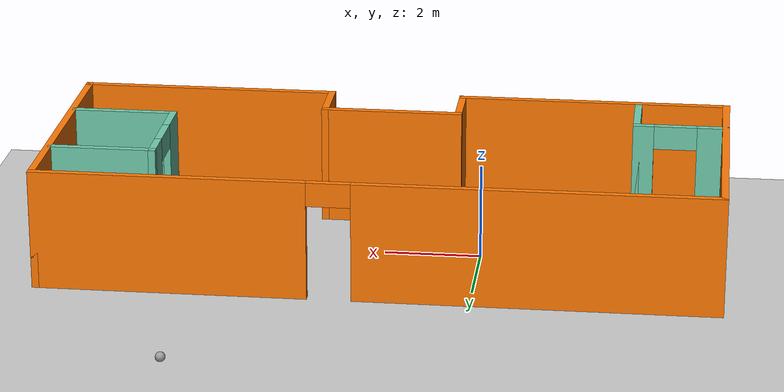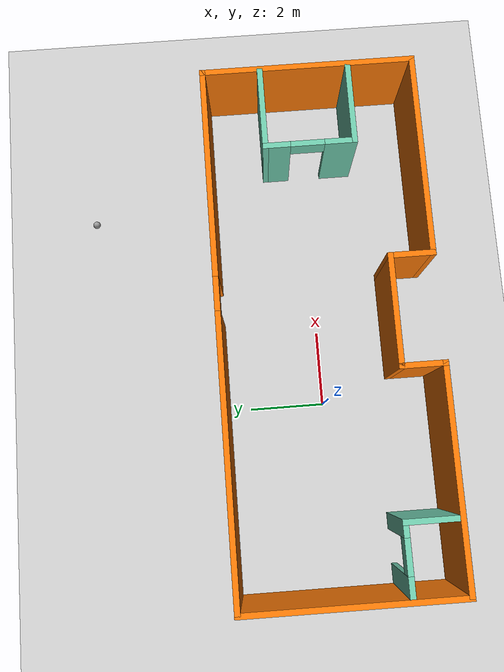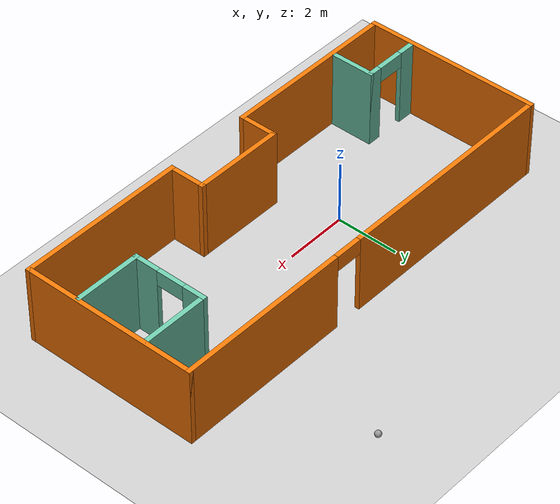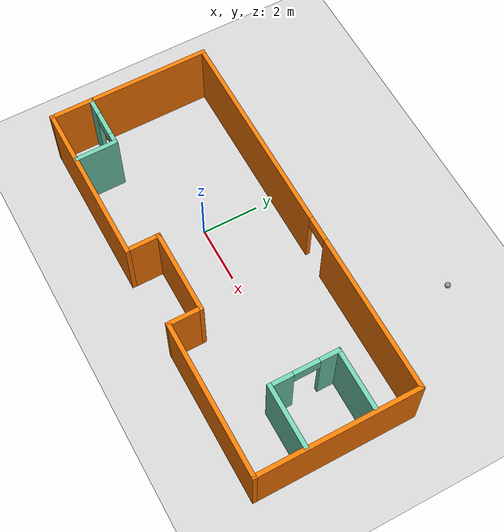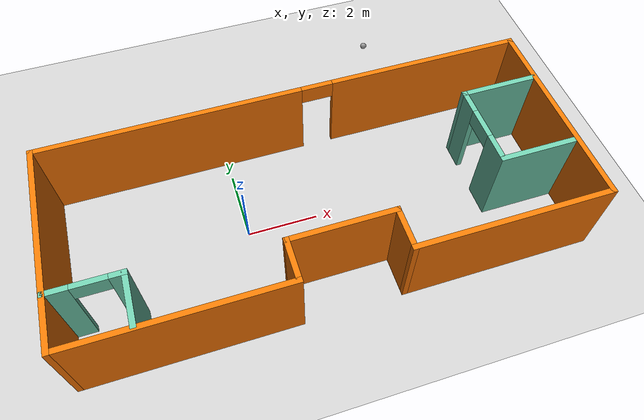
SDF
<sdf version="1.6">
 <world name="default">
  <light name="sun" type="directional">
   <pose>0 0 10 0 -0 0</pose>
   <diffuse>0.8 0.8 0.8 1</diffuse>
   <specular>0.2 0.2 0.2 1</specular>
   <attenuation>
    <range>1000</range>
    <constant>0.9</constant>
    <linear>0.01</linear>
    <quadratic>0.001</quadratic>
   </attenuation>
   <direction>-0.5 0.1 -0.9</direction>
  </light>
  <model name="ground_plane">
   <static>1</static>
   <link name="link">
    <collision name="collision">
     <geometry><plane><normal>0 0 1</normal><size>100 100</size></plane></geometry>
     <surface>
      <contact><collide_bitmask>65535</collide_bitmask></contact>
      <friction><ode><mu>100</mu><mu2>50</mu2></ode></friction>
     </surface>
    </collision>
    <visual name="visual">
     <cast_shadows>0</cast_shadows>
     <geometry><plane><normal>0 0 1</normal><size>100 100</size></plane></geometry>
     <material>
      <script><uri>file://media/materials/scripts/gazebo.material</uri><name>Gazebo/Grey</name></script>
     </material>
    </visual>
   </link>
  </model>
  <gravity>0 0 -9.8</gravity>
  <magnetic_field>6e-06 2.3e-05 -4.2e-05</magnetic_field>
  <atmosphere type="adiabatic"/>
  <physics name="default_physics" default="0" type="ode">
   <max_step_size>0.001</max_step_size>
   <real_time_factor>1</real_time_factor>
   <real_time_update_rate>1000</real_time_update_rate>
  </physics>
  <scene><ambient>0.4 0.4 0.4 1</ambient><background>0.7 0.7 0.7 1</background><shadows>1</shadows></scene>
  <spherical_coordinates>
   <surface_model>EARTH_WGS84</surface_model>
   <latitude_deg>0</latitude_deg>
   <longitude_deg>0</longitude_deg>
   <elevation>0</elevation>
   <heading_deg>0</heading_deg>
  </spherical_coordinates>
  <model name="my_ball">
   <link name="link_0">
    <inertial>
     <mass>1</mass>
     <inertia><ixx>0.1</ixx><ixy>0</ixy><ixz>0</ixz><iyy>0.1</iyy><iyz>0</iyz><izz>0.1</izz></inertia>
    </inertial>
    <visual name="visual">
     <geometry><sphere><radius>0.1</radius></sphere></geometry>
     <material>
      <lighting>1</lighting>
      <script><uri>file://media/materials/scripts/gazebo.material</uri><name>Gazebo/Grey</name></script>
      <shader type="pixel"><normal_map>__default__</normal_map></shader>
      <ambient>1 1 1 1</ambient>
      <diffuse>1 1 1 1</diffuse>
      <specular>1 1 1 1</specular>
      <emissive>1 1 1 1</emissive>
     </material>
    </visual>
    <collision name="collision">
     <geometry><sphere><radius>0.1</radius></sphere></geometry>
     <surface>
      <friction>
       <ode><mu>1</mu><mu2>1</mu2><fdir1>0 0 0</fdir1><slip1>0</slip1><slip2>0</slip2></ode>
       <torsional>
        <coefficient>1</coefficient>
        <patch_radius>0</patch_radius>
        <surface_radius>0</surface_radius>
        <use_patch_radius>1</use_patch_radius>
        <ode><slip>0</slip></ode>
       </torsional>
      </friction>
      <bounce><restitution_coefficient>0</restitution_coefficient><threshold>1e+06</threshold></bounce>
      <contact>
       <collide_without_contact>0</collide_without_contact>
       <collide_without_contact_bitmask>1</collide_without_contact_bitmask>
       <collide_bitmask>1</collide_bitmask>
       <ode>
        <soft_cfm>0</soft_cfm>
        <soft_erp>0.2</soft_erp>
        <kp>1e+13</kp>
        <kd>1</kd>
        <max_vel>0.01</max_vel>
        <min_depth>0</min_depth>
       </ode>
       <bullet>
        <split_impulse>1</split_impulse>
        <split_impulse_penetration_threshold>-0.01</split_impulse_penetration_threshold>
        <soft_cfm>0</soft_cfm>
        <soft_erp>0.2</soft_erp>
        <kp>1e+13</kp>
        <kd>1</kd>
       </bullet>
      </contact>
     </surface>
    </collision>
   </link>
   <static>0</static>
   <pose>5.63508 6.07431 0.1 0 -0 0</pose>
  </model>
  <model name="my_building_0">
   <pose>1.93031 -0.162625 0 0 -0 0</pose>
   <link name="Wall_1">
    <collision name="Wall_1_Collision">
     <geometry><box><size>5.75 0.15 2.5</size></box></geometry>
     <pose>0 0 1.25 0 -0 0</pose>
    </collision>
    <visual name="Wall_1_Visual">
     <pose>0 0 1.25 0 -0 0</pose>
     <geometry><box><size>5.75 0.15 2.5</size></box></geometry>
     <material>
      <script><uri>file://media/materials/scripts/gazebo.material</uri><name>Gazebo/Grey</name></script>
      <ambient>0.996078 0.47451 0.0196078 1</ambient>
     </material>
     <meta><layer>0</layer></meta>
    </visual>
    <pose>-6.925 0 0 0 -0 1.5708</pose>
   </link>
   <link name="Wall_10">
    <collision name="Wall_10_Collision">
     <geometry><box><size>5.75 0.15 2.5</size></box></geometry>
     <pose>0 0 1.25 0 -0 0</pose>
    </collision>
    <visual name="Wall_10_Visual">
     <pose>0 0 1.25 0 -0 0</pose>
     <geometry><box><size>5.75 0.15 2.5</size></box></geometry>
     <material>
      <script><uri>file://media/materials/scripts/gazebo.material</uri><name>Gazebo/Grey</name></script>
      <ambient>0.996078 0.47451 0.0196078 1</ambient>
     </material>
     <meta><layer>0</layer></meta>
    </visual>
    <pose>-4.075 -2.8 0 0 -0 3.14159</pose>
   </link>
   <link name="Wall_12">
    <pose>-5.98479 -1.39225 0 0 -0 0</pose>
    <visual name="Wall_12_Visual_0">
     <pose>-0.670403 0 1.25 0 -0 0</pose>
     <geometry><box><size>0.659195 0.15 2.5</size></box></geometry>
     <material>
      <script><uri>file://media/materials/scripts/gazebo.material</uri><name>Gazebo/Grey</name></script>
      <ambient>0.435294 0.796078 0.67451 1</ambient>
     </material>
     <meta><layer>0</layer></meta>
    </visual>
    <collision name="Wall_12_Collision_0">
     <geometry><box><size>0.659195 0.15 2.5</size></box></geometry>
     <pose>-0.670403 0 1.25 0 -0 0</pose>
    </collision>
    <visual name="Wall_12_Visual_1">
     <pose>0.779597 0 1.25 0 -0 0</pose>
     <geometry><box><size>0.440805 0.15 2.5</size></box></geometry>
     <material>
      <script><uri>file://media/materials/scripts/gazebo.material</uri><name>Gazebo/Grey</name></script>
      <ambient>0.435294 0.796078 0.67451 1</ambient>
     </material>
     <meta><layer>0</layer></meta>
    </visual>
    <collision name="Wall_12_Collision_1">
     <geometry><box><size>0.440805 0.15 2.5</size></box></geometry>
     <pose>0.779597 0 1.25 0 -0 0</pose>
    </collision>
    <visual name="Wall_12_Visual_2">
     <pose>0.109195 0 2.25 0 -0 0</pose>
     <geometry><box><size>0.9 0.15 0.5</size></box></geometry>
     <material>
      <script><uri>file://media/materials/scripts/gazebo.material</uri><name>Gazebo/Grey</name></script>
      <ambient>0.435294 0.796078 0.67451 1</ambient>
     </material>
     <meta><layer>0</layer></meta>
    </visual>
    <collision name="Wall_12_Collision_2">
     <geometry><box><size>0.9 0.15 0.5</size></box></geometry>
     <pose>0.109195 0 2.25 0 -0 0</pose>
    </collision>
   </link>
   <link name="Wall_13">
    <collision name="Wall_13_Collision">
     <geometry><box><size>1.5 0.15 2.5</size></box></geometry>
     <pose>0 0 1.25 0 -0 0</pose>
    </collision>
    <visual name="Wall_13_Visual">
     <pose>0 0 1.25 0 -0 0</pose>
     <geometry><box><size>1.5 0.15 2.5</size></box></geometry>
     <material>
      <script><uri>file://media/materials/scripts/gazebo.material</uri><name>Gazebo/Grey</name></script>
      <ambient>0.435294 0.796078 0.67451 1</ambient>
     </material>
     <meta><layer>0</layer></meta>
    </visual>
    <pose>-5.05979 -2.06725 0 0 0 -1.5708</pose>
   </link>
   <link name="Wall_15">
    <collision name="Wall_15_Collision">
     <geometry><box><size>2.25 0.15 2.5</size></box></geometry>
     <pose>0 0 1.25 0 -0 0</pose>
    </collision>
    <visual name="Wall_15_Visual">
     <pose>0 0 1.25 0 -0 0</pose>
     <geometry><box><size>2.25 0.15 2.5</size></box></geometry>
     <material>
      <script><uri>file://media/materials/scripts/gazebo.material</uri><name>Gazebo/Grey</name></script>
      <ambient>0.435294 0.796078 0.67451 1</ambient>
     </material>
     <meta><layer>0</layer></meta>
    </visual>
    <pose>5.80413 1.26928 0 0 -0 3.14159</pose>
   </link>
   <link name="Wall_16">
    <pose>4.75413 0.094285 0 0 0 -1.5708</pose>
    <visual name="Wall_16_Visual_0">
     <pose>-0.882381 0 1.25 0 -0 0</pose>
     <geometry><box><size>0.735239 0.15 2.5</size></box></geometry>
     <material>
      <script><uri>file://media/materials/scripts/gazebo.material</uri><name>Gazebo/Grey</name></script>
      <ambient>0.435294 0.796078 0.67451 1</ambient>
     </material>
     <meta><layer>0</layer></meta>
    </visual>
    <collision name="Wall_16_Collision_0">
     <geometry><box><size>0.735239 0.15 2.5</size></box></geometry>
     <pose>-0.882381 0 1.25 0 -0 0</pose>
    </collision>
    <visual name="Wall_16_Visual_1">
     <pose>0.817619 0 1.25 0 -0 0</pose>
     <geometry><box><size>0.864761 0.15 2.5</size></box></geometry>
     <material>
      <script><uri>file://media/materials/scripts/gazebo.material</uri><name>Gazebo/Grey</name></script>
      <ambient>0.435294 0.796078 0.67451 1</ambient>
     </material>
     <meta><layer>0</layer></meta>
    </visual>
    <collision name="Wall_16_Collision_1">
     <geometry><box><size>0.864761 0.15 2.5</size></box></geometry>
     <pose>0.817619 0 1.25 0 -0 0</pose>
    </collision>
    <visual name="Wall_16_Visual_2">
     <pose>-0.064761 0 2.25 0 -0 0</pose>
     <geometry><box><size>0.9 0.15 0.5</size></box></geometry>
     <material>
      <script><uri>file://media/materials/scripts/gazebo.material</uri><name>Gazebo/Grey</name></script>
      <ambient>0.435294 0.796078 0.67451 1</ambient>
     </material>
     <meta><layer>0</layer></meta>
    </visual>
    <collision name="Wall_16_Collision_2">
     <geometry><box><size>0.9 0.15 0.5</size></box></geometry>
     <pose>-0.064761 0 2.25 0 -0 0</pose>
    </collision>
   </link>
   <link name="Wall_17">
    <collision name="Wall_17_Collision">
     <geometry><box><size>2.25 0.15 2.5</size></box></geometry>
     <pose>0 0 1.25 0 -0 0</pose>
    </collision>
    <visual name="Wall_17_Visual">
     <pose>0 0 1.25 0 -0 0</pose>
     <geometry><box><size>2.25 0.15 2.5</size></box></geometry>
     <material>
      <script><uri>file://media/materials/scripts/gazebo.material</uri><name>Gazebo/Grey</name></script>
      <ambient>0.435294 0.796078 0.67451 1</ambient>
     </material>
     <meta><layer>0</layer></meta>
    </visual>
    <pose>5.80413 -1.08072 0 0 -0 0</pose>
   </link>
   <link name="Wall_4">
    <pose>0 2.8 0 0 -0 0</pose>
    <visual name="Wall_4_Visual_0">
     <pose>-3.27125 0 1.25 0 -0 0</pose>
     <geometry><box><size>7.45751 0.15 2.5</size></box></geometry>
     <material>
      <script><uri>file://media/materials/scripts/gazebo.material</uri><name>Gazebo/Grey</name></script>
      <ambient>0.996078 0.47451 0.0196078 1</ambient>
     </material>
     <meta><layer>0</layer></meta>
    </visual>
    <collision name="Wall_4_Collision_0">
     <geometry><box><size>7.45751 0.15 2.5</size></box></geometry>
     <pose>-3.27125 0 1.25 0 -0 0</pose>
    </collision>
    <visual name="Wall_4_Visual_1">
     <pose>4.17875 0 1.25 0 -0 0</pose>
     <geometry><box><size>5.64249 0.15 2.5</size></box></geometry>
     <material>
      <script><uri>file://media/materials/scripts/gazebo.material</uri><name>Gazebo/Grey</name></script>
      <ambient>0.996078 0.47451 0.0196078 1</ambient>
     </material>
     <meta><layer>0</layer></meta>
    </visual>
    <collision name="Wall_4_Collision_1">
     <geometry><box><size>5.64249 0.15 2.5</size></box></geometry>
     <pose>4.17875 0 1.25 0 -0 0</pose>
    </collision>
    <visual name="Wall_4_Visual_2">
     <pose>0.907506 0 2.25 0 -0 0</pose>
     <geometry><box><size>0.9 0.15 0.5</size></box></geometry>
     <material>
      <script><uri>file://media/materials/scripts/gazebo.material</uri><name>Gazebo/Grey</name></script>
      <ambient>0.996078 0.47451 0.0196078 1</ambient>
     </material>
     <meta><layer>0</layer></meta>
    </visual>
    <collision name="Wall_4_Collision_2">
     <geometry><box><size>0.9 0.15 0.5</size></box></geometry>
     <pose>0.907506 0 2.25 0 -0 0</pose>
    </collision>
   </link>
   <link name="Wall_5">
    <collision name="Wall_5_Collision">
     <geometry><box><size>5.75 0.15 2.5</size></box></geometry>
     <pose>0 0 1.25 0 -0 0</pose>
    </collision>
    <visual name="Wall_5_Visual">
     <pose>0 0 1.25 0 -0 0</pose>
     <geometry><box><size>5.75 0.15 2.5</size></box></geometry>
     <material>
      <script><uri>file://media/materials/scripts/gazebo.material</uri><name>Gazebo/Grey</name></script>
      <ambient>0.996078 0.47451 0.0196078 1</ambient>
     </material>
     <meta><layer>0</layer></meta>
    </visual>
    <pose>6.925 0 0 0 0 -1.5708</pose>
   </link>
   <link name="Wall_6">
    <collision name="Wall_6_Collision">
     <geometry><box><size>5.5 0.15 2.5</size></box></geometry>
     <pose>0 0 1.25 0 -0 0</pose>
    </collision>
    <visual name="Wall_6_Visual">
     <pose>0 0 1.25 0 -0 0</pose>
     <geometry><box><size>5.5 0.15 2.5</size></box></geometry>
     <material>
      <script><uri>file://media/materials/scripts/gazebo.material</uri><name>Gazebo/Grey</name></script>
      <ambient>0.996078 0.47451 0.0196078 1</ambient>
     </material>
     <meta><layer>0</layer></meta>
    </visual>
    <pose>4.25 -2.8 0 0 -0 3.14159</pose>
   </link>
   <link name="Wall_7">
    <collision name="Wall_7_Collision">
     <geometry><box><size>1.25 0.15 2.5</size></box></geometry>
     <pose>0 0 1.25 0 -0 0</pose>
    </collision>
    <visual name="Wall_7_Visual">
     <pose>0 0 1.25 0 -0 0</pose>
     <geometry><box><size>1.25 0.15 2.5</size></box></geometry>
     <material>
      <script><uri>file://media/materials/scripts/gazebo.material</uri><name>Gazebo/Grey</name></script>
      <ambient>0.996078 0.47451 0.0196078 1</ambient>
     </material>
     <meta><layer>0</layer></meta>
    </visual>
    <pose>1.575 -2.25 0 0 -0 1.5708</pose>
   </link>
   <link name="Wall_8">
    <collision name="Wall_8_Collision">
     <geometry><box><size>3 0.15 2.5</size></box></geometry>
     <pose>0 0 1.25 0 -0 0</pose>
    </collision>
    <visual name="Wall_8_Visual">
     <pose>0 0 1.25 0 -0 0</pose>
     <geometry><box><size>3 0.15 2.5</size></box></geometry>
     <material>
      <script><uri>file://media/materials/scripts/gazebo.material</uri><name>Gazebo/Grey</name></script>
      <ambient>0.996078 0.47451 0.0196078 1</ambient>
     </material>
     <meta><layer>0</layer></meta>
    </visual>
    <pose>0.15 -1.7 0 0 -0 3.14159</pose>
   </link>
   <link name="Wall_9">
    <collision name="Wall_9_Collision">
     <geometry><box><size>1.25 0.15 2.5</size></box></geometry>
     <pose>0 0 1.25 0 -0 0</pose>
    </collision>
    <visual name="Wall_9_Visual">
     <pose>0 0 1.25 0 -0 0</pose>
     <geometry><box><size>1.25 0.15 2.5</size></box></geometry>
     <material>
      <script><uri>file://media/materials/scripts/gazebo.material</uri><name>Gazebo/Grey</name></script>
      <ambient>0.996078 0.47451 0.0196078 1</ambient>
     </material>
     <meta><layer>0</layer></meta>
    </visual>
    <pose>-1.275 -2.25 0 0 0 -1.5708</pose>
   </link>
   <static>1</static>
  </model>
 </world>
</sdf>
